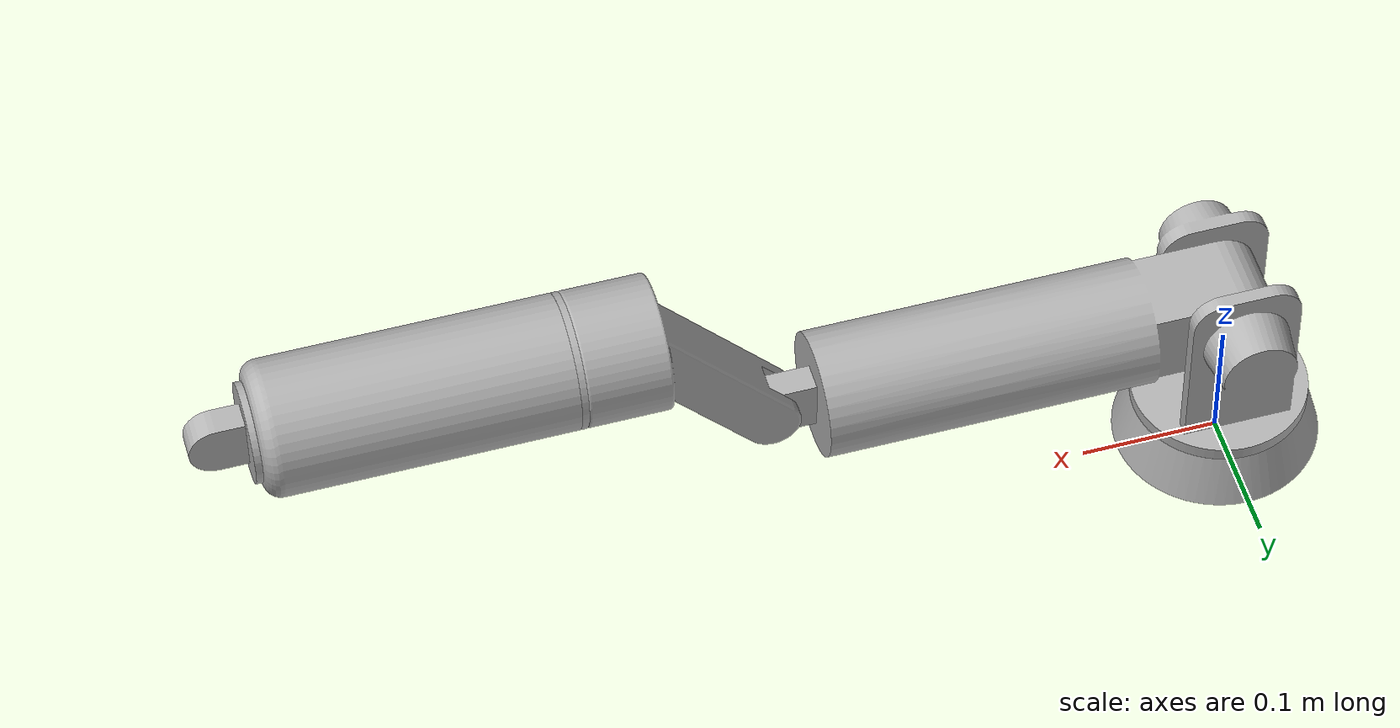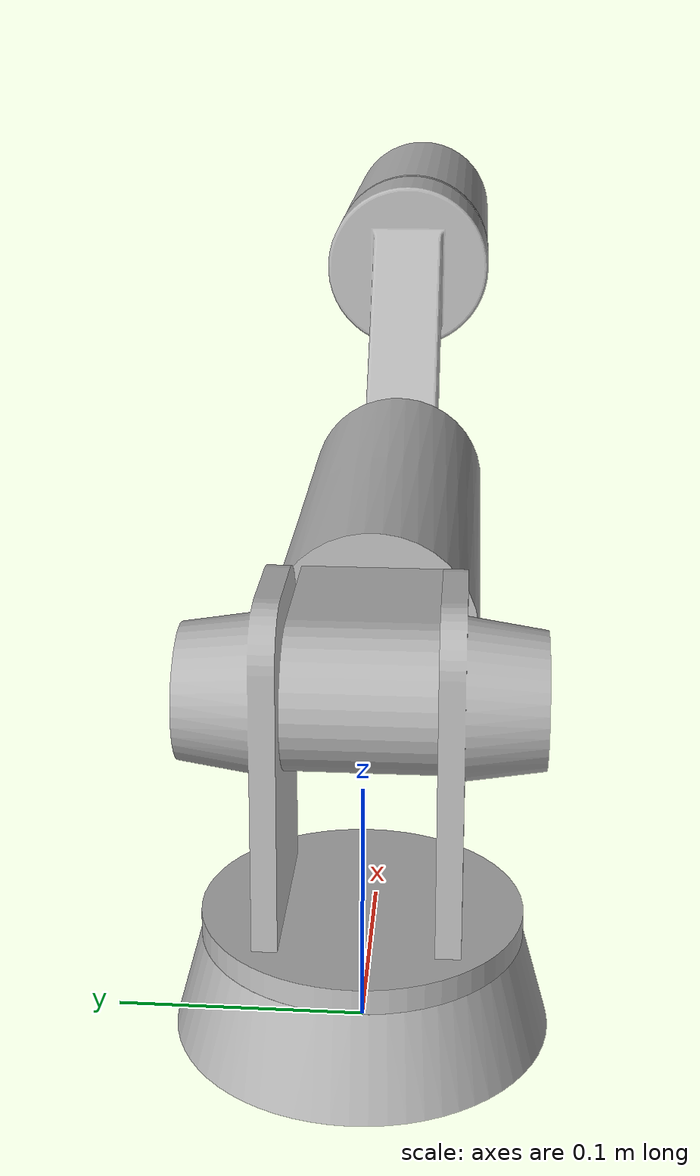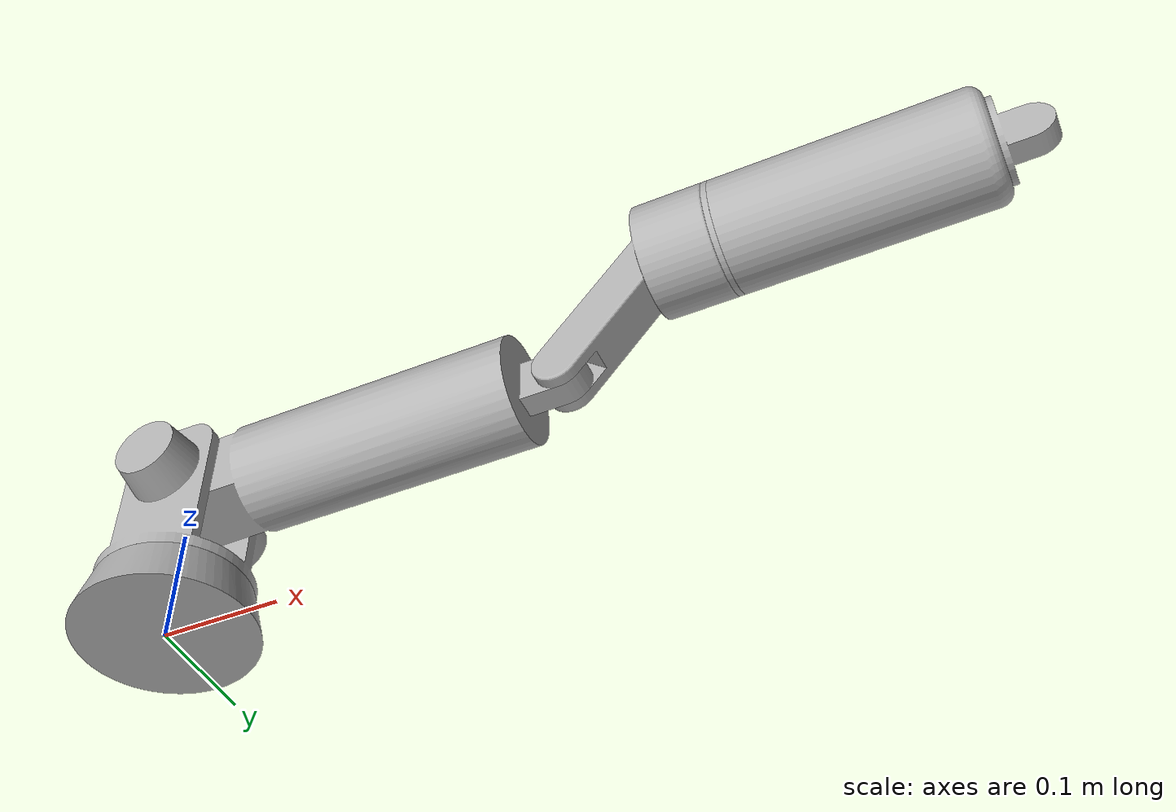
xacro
<?xml version="1.0" ?>
<robot name="Spot_Arm_Demo" xmlns:xacro="http://www.ros.org/wiki/xacro">

<xacro:include filename="$(find Spot_Arm_Demo_description)/urdf/materials.xacro" />
<xacro:include filename="$(find Spot_Arm_Demo_description)/urdf/Spot_Arm_Demo.trans" />
<xacro:include filename="$(find Spot_Arm_Demo_description)/urdf/Spot_Arm_Demo.gazebo" />
<link name="base_link">
  <inertial>
    <origin xyz="1.4893738513430887e-17 1.4893738513430887e-17 0.01897600060636538" rpy="0 0 0"/>
    <mass value="4.793647614048811"/>
    <inertia ixx="0.006505" iyy="0.006505" izz="0.011739" ixy="0.0" iyz="-0.0" ixz="-0.0"/>
  </inertial>
  <visual>
    <origin xyz="0 0 0" rpy="0 0 0"/>
    <geometry>
      <mesh filename="package://Spot_Arm_Demo_description/meshes/base_link.stl" scale="0.001 0.001 0.001"/>
    </geometry>
    <material name="silver"/>
  </visual>
  <collision>
    <origin xyz="0 0 0" rpy="0 0 0"/>
    <geometry>
      <mesh filename="package://Spot_Arm_Demo_description/meshes/base_link.stl" scale="0.001 0.001 0.001"/>
    </geometry>
  </collision>
</link>

<link name="link1_1">
  <inertial>
    <origin xyz="-0.00010166140320390767 -0.002439812837878551 0.06408235101807577" rpy="0 0 0"/>
    <mass value="3.793924423065161"/>
    <inertia ixx="0.014741" iyy="0.010145" izz="0.008966" ixy="-1e-06" iyz="0.000332" ixz="1.4e-05"/>
  </inertial>
  <visual>
    <origin xyz="-0.0 -0.0 -0.04" rpy="0 0 0"/>
    <geometry>
      <mesh filename="package://Spot_Arm_Demo_description/meshes/link1_1.stl" scale="0.001 0.001 0.001"/>
    </geometry>
    <material name="silver"/>
  </visual>
  <collision>
    <origin xyz="-0.0 -0.0 -0.04" rpy="0 0 0"/>
    <geometry>
      <mesh filename="package://Spot_Arm_Demo_description/meshes/link1_1.stl" scale="0.001 0.001 0.001"/>
    </geometry>
  </collision>
</link>

<link name="link2__1">
  <inertial>
    <origin xyz="0.16558407457674612 -0.03000000000000001 2.944911487862134e-06" rpy="0 0 0"/>
    <mass value="14.318796900232268"/>
    <inertia ixx="0.013453" iyy="0.118454" izz="0.118371" ixy="-0.0" iyz="-0.0" ixz="-7e-06"/>
  </inertial>
  <visual>
    <origin xyz="-0.0 -0.03 -0.14" rpy="0 0 0"/>
    <geometry>
      <mesh filename="package://Spot_Arm_Demo_description/meshes/link2__1.stl" scale="0.001 0.001 0.001"/>
    </geometry>
    <material name="silver"/>
  </visual>
  <collision>
    <origin xyz="-0.0 -0.03 -0.14" rpy="0 0 0"/>
    <geometry>
      <mesh filename="package://Spot_Arm_Demo_description/meshes/link2__1.stl" scale="0.001 0.001 0.001"/>
    </geometry>
  </collision>
</link>

<link name="link3_1">
  <inertial>
    <origin xyz="0.07808838335862744 -0.010000000424296319 0.07857423931894239" rpy="0 0 0"/>
    <mass value="3.85086155980773"/>
    <inertia ixx="0.00704" iyy="0.010273" izz="0.006864" ixy="-0.0" iyz="-0.0" ixz="-0.003734"/>
  </inertial>
  <visual>
    <origin xyz="-0.3385 -0.01 -0.140137" rpy="0 0 0"/>
    <geometry>
      <mesh filename="package://Spot_Arm_Demo_description/meshes/link3_1.stl" scale="0.001 0.001 0.001"/>
    </geometry>
    <material name="silver"/>
  </visual>
  <collision>
    <origin xyz="-0.3385 -0.01 -0.140137" rpy="0 0 0"/>
    <geometry>
      <mesh filename="package://Spot_Arm_Demo_description/meshes/link3_1.stl" scale="0.001 0.001 0.001"/>
    </geometry>
  </collision>
</link>

<link name="link4_1">
  <inertial>
    <origin xyz="0.09116530618238228 -4.4703483845207635e-10 1.651766284860301e-08" rpy="0 0 0"/>
    <mass value="5.7160738370828925"/>
    <inertia ixx="0.003645" iyy="0.01821" izz="0.01821" ixy="-0.0" iyz="-0.0" ixz="-0.0"/>
  </inertial>
  <visual>
    <origin xyz="-0.4455 0.0 -0.237477" rpy="0 0 0"/>
    <geometry>
      <mesh filename="package://Spot_Arm_Demo_description/meshes/link4_1.stl" scale="0.001 0.001 0.001"/>
    </geometry>
    <material name="silver"/>
  </visual>
  <collision>
    <origin xyz="-0.4455 0.0 -0.237477" rpy="0 0 0"/>
    <geometry>
      <mesh filename="package://Spot_Arm_Demo_description/meshes/link4_1.stl" scale="0.001 0.001 0.001"/>
    </geometry>
  </collision>
</link>

<link name="link5_1">
  <inertial>
    <origin xyz="0.11485690332465653 -4.47034782786287e-10 1.6517662820847434e-08" rpy="0 0 0"/>
    <mass value="5.807962446835381"/>
    <inertia ixx="0.009563" iyy="0.030958" izz="0.030939" ixy="-0.0" iyz="-0.0" ixz="0.0"/>
  </inertial>
  <visual>
    <origin xyz="-0.4805 0.0 -0.237477" rpy="0 0 0"/>
    <geometry>
      <mesh filename="package://Spot_Arm_Demo_description/meshes/link5_1.stl" scale="0.001 0.001 0.001"/>
    </geometry>
    <material name="silver"/>
  </visual>
  <collision>
    <origin xyz="-0.4805 0.0 -0.237477" rpy="0 0 0"/>
    <geometry>
      <mesh filename="package://Spot_Arm_Demo_description/meshes/link5_1.stl" scale="0.001 0.001 0.001"/>
    </geometry>
  </collision>
</link>

<joint name="Revolución4" type="continuous">
  <origin xyz="0.0 0.0 0.04" rpy="0 0 0"/>
  <parent link="base_link"/>
  <child link="link1_1"/>
  <axis xyz="0.0 0.0 1.0"/>
</joint>

<joint name="Revolución5" type="continuous">
  <origin xyz="0.0 0.03 0.1" rpy="0 0 0"/>
  <parent link="link1_1"/>
  <child link="link2__1"/>
  <axis xyz="0.0 -1.0 0.0"/>
</joint>

<joint name="Revolución6" type="continuous">
  <origin xyz="0.3385 -0.02 0.000137" rpy="0 0 0"/>
  <parent link="link2__1"/>
  <child link="link3_1"/>
  <axis xyz="0.0 1.0 0.0"/>
</joint>

<joint name="Revolución7" type="continuous">
  <origin xyz="0.107 -0.01 0.09734" rpy="0 0 0"/>
  <parent link="link3_1"/>
  <child link="link4_1"/>
  <axis xyz="1.0 0.0 0.0"/>
</joint>

<joint name="Corredera8" type="prismatic">
  <origin xyz="0.035 0.0 0.0" rpy="0 0 0"/>
  <parent link="link4_1"/>
  <child link="link5_1"/>
  <axis xyz="1.0 0.0 0.0"/>
  <limit upper="0.0" lower="0.0" effort="100" velocity="100"/>
</joint>

</robot>

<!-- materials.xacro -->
<robot name="Spot_Arm_Demo" xmlns:xacro="http://www.ros.org/wiki/xacro" >

<material name="silver">
  <color rgba="0.700 0.700 0.700 1.000"/>
</material>

</robot>

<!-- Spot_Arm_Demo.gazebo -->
<robot name="Spot_Arm_Demo" xmlns:xacro="http://www.ros.org/wiki/xacro" >

<xacro:property name="body_color" value="Gazebo/Silver" />

<gazebo>
  <plugin name="control" filename="libgazebo_ros_control.so"/>
</gazebo>
<gazebo reference="base_link">
  <material>${body_color}</material>
  <mu1>0.2</mu1>
  <mu2>0.2</mu2>
  <selfCollide>true</selfCollide>
  <gravity>true</gravity>
</gazebo>

<gazebo reference="link1_1">
  <material>${body_color}</material>
  <mu1>0.2</mu1>
  <mu2>0.2</mu2>
  <selfCollide>true</selfCollide>
</gazebo>

<gazebo reference="link2__1">
  <material>${body_color}</material>
  <mu1>0.2</mu1>
  <mu2>0.2</mu2>
  <selfCollide>true</selfCollide>
</gazebo>

<gazebo reference="link3_1">
  <material>${body_color}</material>
  <mu1>0.2</mu1>
  <mu2>0.2</mu2>
  <selfCollide>true</selfCollide>
</gazebo>

<gazebo reference="link4_1">
  <material>${body_color}</material>
  <mu1>0.2</mu1>
  <mu2>0.2</mu2>
  <selfCollide>true</selfCollide>
</gazebo>

<gazebo reference="link5_1">
  <material>${body_color}</material>
  <mu1>0.2</mu1>
  <mu2>0.2</mu2>
  <selfCollide>true</selfCollide>
</gazebo>

</robot>
